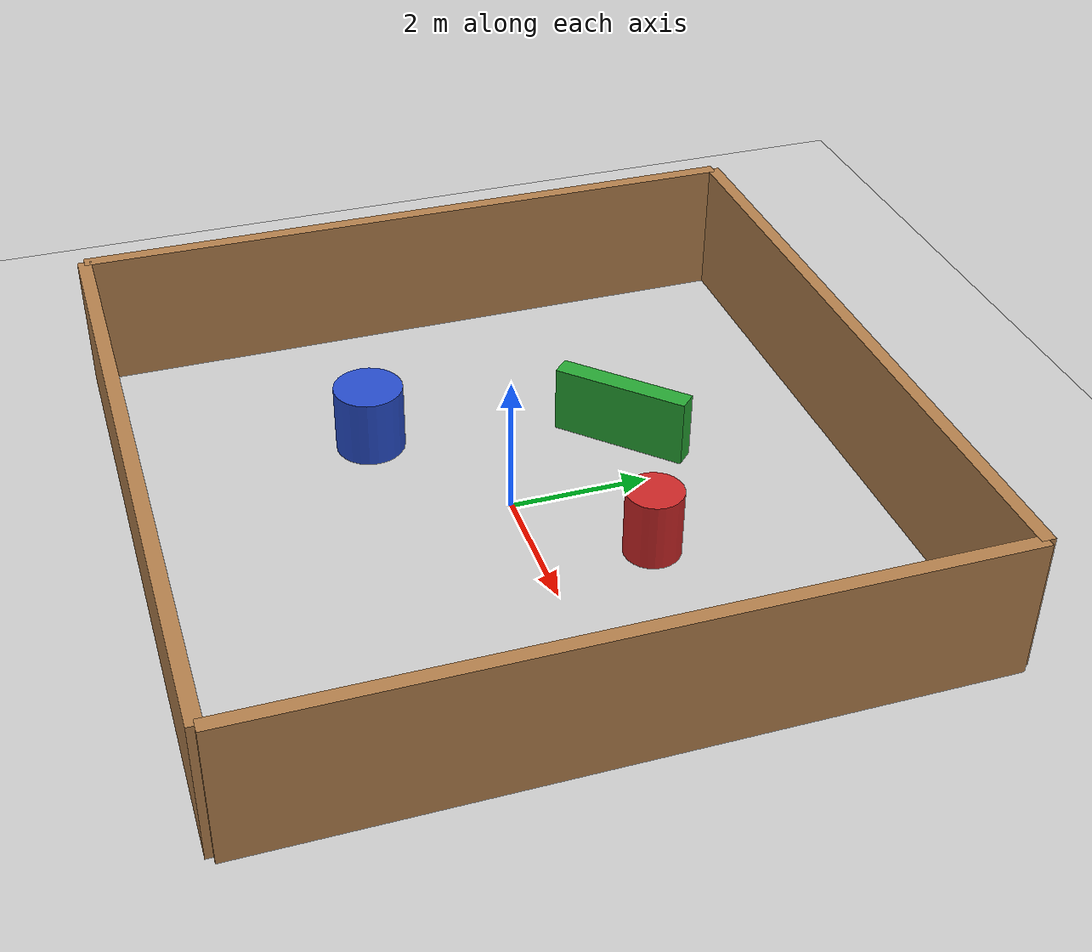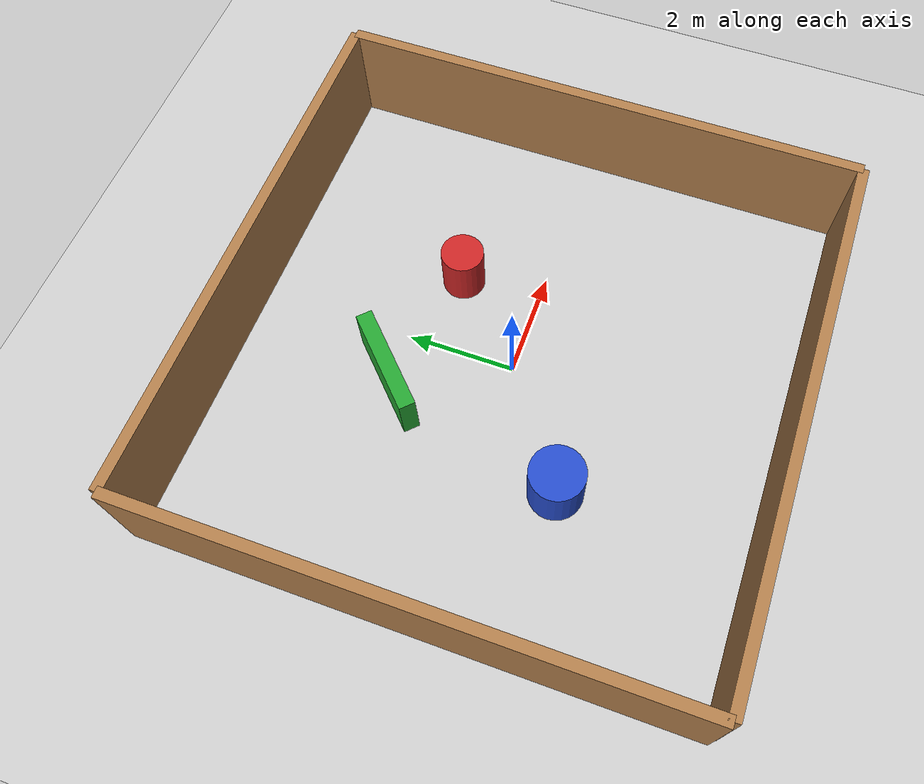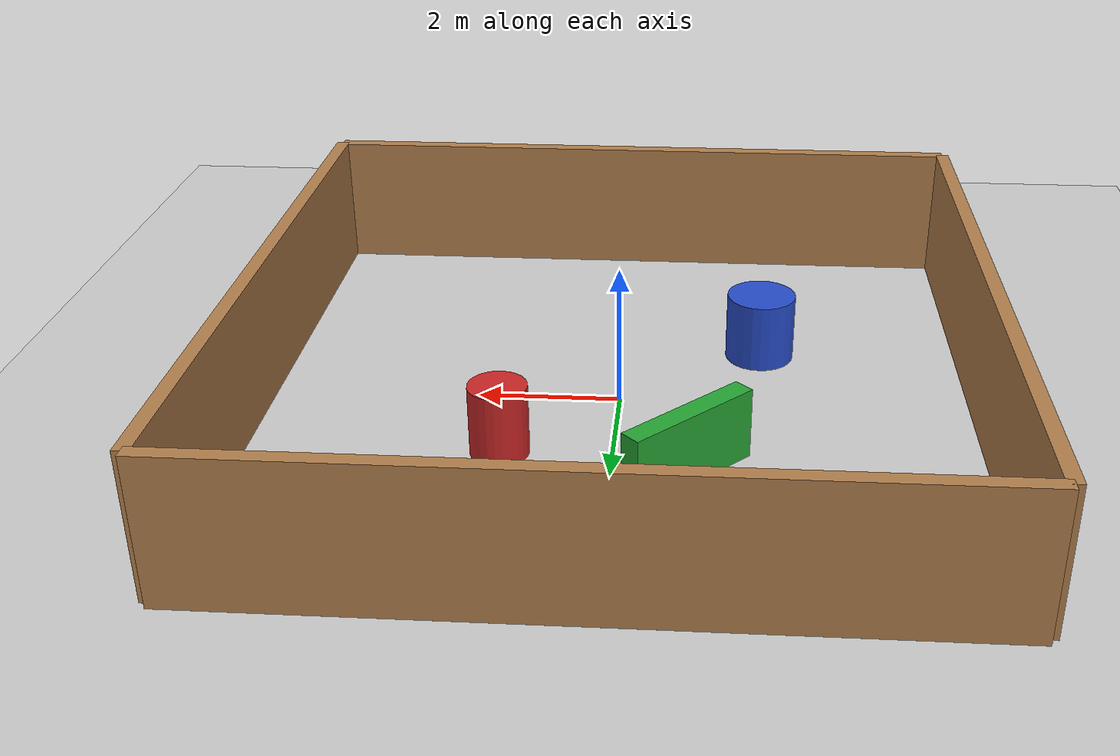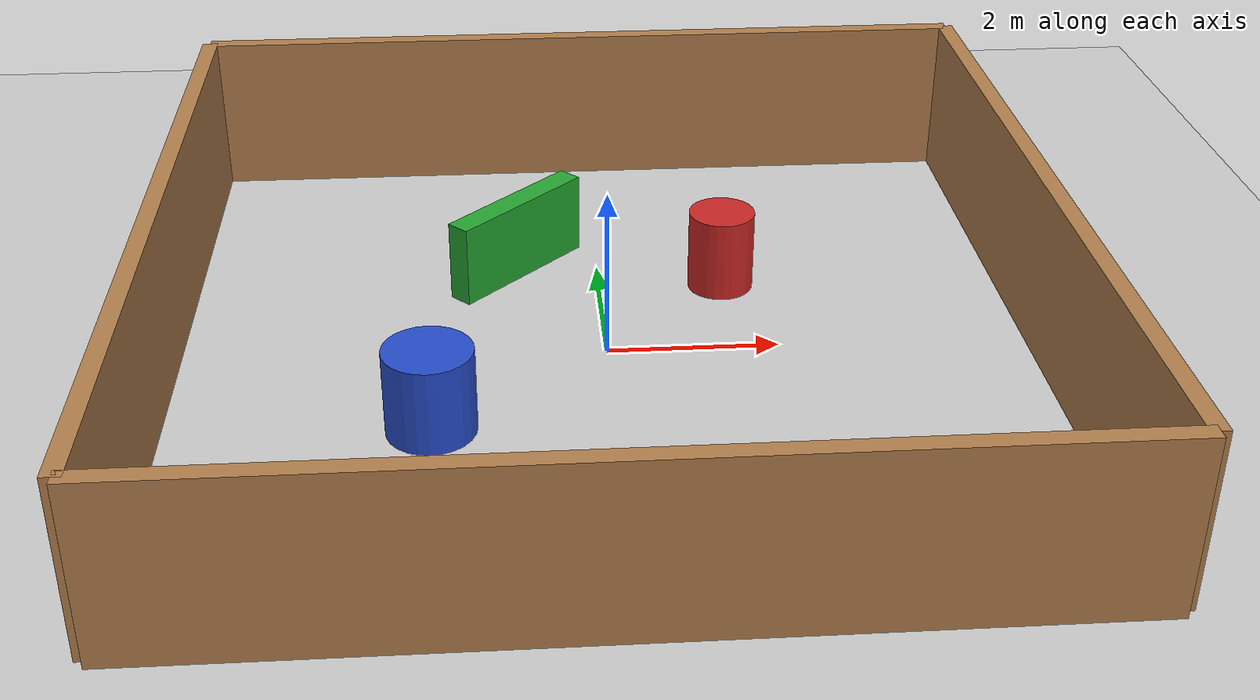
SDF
<sdf version='1.7'>
  <world name='default'>
    <light name='sun' type='directional'>
      <cast_shadows>1</cast_shadows>
      <pose>0 0 10 0 -0 0</pose>
      <diffuse>0.8 0.8 0.8 1</diffuse>
      <specular>0.2 0.2 0.2 1</specular>
      <attenuation>
        <range>1000</range>
        <constant>0.9</constant>
        <linear>0.01</linear>
        <quadratic>0.001</quadratic>
      </attenuation>
      <direction>-0.5 0.1 -0.9</direction>
    </light>
    <model name='ground_plane'>
      <static>1</static>
      <link name='link'>
        <collision name='collision'>
          <geometry>
            <plane>
              <normal>0 0 1</normal>
              <size>100 100</size>
            </plane>
          </geometry>
          <surface>
            <friction>
              <ode>
                <mu>100</mu>
                <mu2>50</mu2>
              </ode>
            </friction>
          </surface>
        </collision>
        <visual name='visual'>
          <cast_shadows>0</cast_shadows>
          <geometry>
            <plane>
              <normal>0 0 1</normal>
              <size>100 100</size>
            </plane>
          </geometry>
          <material>
            <script>
              <uri>file://media/materials/scripts/gazebo.material</uri>
              <name>Gazebo/Grey</name>
            </script>
          </material>
        </visual>
      </link>
    </model>

    <!-- Enclosing Wall 1 -->
    <model name='wall_north'>
      <static>1</static>
      <pose>0 5 1 0 0 0</pose>
      <link name='link'>
        <collision name='collision'>
          <geometry><box><size>10 0.2 2</size></box></geometry>
        </collision>
        <visual name='visual'>
          <geometry><box><size>10 0.2 2</size></box></geometry>
          <material><script><uri>file://media/materials/scripts/gazebo.material</uri><name>Gazebo/Wood</name></script></material>
        </visual>
      </link>
    </model>

    <!-- Enclosing Wall 2 -->
    <model name='wall_south'>
      <static>1</static>
      <pose>0 -5 1 0 0 0</pose>
      <link name='link'>
        <collision name='collision'>
          <geometry><box><size>10 0.2 2</size></box></geometry>
        </collision>
        <visual name='visual'>
          <geometry><box><size>10 0.2 2</size></box></geometry>
          <material><script><uri>file://media/materials/scripts/gazebo.material</uri><name>Gazebo/Wood</name></script></material>
        </visual>
      </link>
    </model>

    <!-- Enclosing Wall 3 -->
    <model name='wall_east'>
      <static>1</static>
      <pose>5 0 1 0 0 1.5708</pose>
      <link name='link'>
        <collision name='collision'>
          <geometry><box><size>10 0.2 2</size></box></geometry>
        </collision>
        <visual name='visual'>
          <geometry><box><size>10 0.2 2</size></box></geometry>
          <material><script><uri>file://media/materials/scripts/gazebo.material</uri><name>Gazebo/Wood</name></script></material>
        </visual>
      </link>
    </model>

    <!-- Enclosing Wall 4 -->
    <model name='wall_west'>
      <static>1</static>
      <pose>-5 0 1 0 0 1.5708</pose>
      <link name='link'>
        <collision name='collision'>
          <geometry><box><size>10 0.2 2</size></box></geometry>
        </collision>
        <visual name='visual'>
          <geometry><box><size>10 0.2 2</size></box></geometry>
          <material><script><uri>file://media/materials/scripts/gazebo.material</uri><name>Gazebo/Wood</name></script></material>
        </visual>
      </link>
    </model>

    <!-- Central Pillar 1 -->
    <model name='obstacle_cylinder_1'>
      <static>1</static>
      <pose>1.5 1.5 0.5 0 0 0</pose>
      <link name='link'>
        <collision name='collision'>
          <geometry><cylinder><radius>0.4</radius><length>1.0</length></cylinder></geometry>
        </collision>
        <visual name='visual'>
          <geometry><cylinder><radius>0.4</radius><length>1.0</length></cylinder></geometry>
          <material><script><uri>file://media/materials/scripts/gazebo.material</uri><name>Gazebo/Red</name></script></material>
        </visual>
      </link>
    </model>

    <!-- Central Pillar 2 -->
    <model name='obstacle_cylinder_2'>
      <static>1</static>
      <pose>-2 -1.5 0.5 0 0 0</pose>
      <link name='link'>
        <collision name='collision'>
          <geometry><cylinder><radius>0.5</radius><length>1.0</length></cylinder></geometry>
        </collision>
        <visual name='visual'>
          <geometry><cylinder><radius>0.5</radius><length>1.0</length></cylinder></geometry>
          <material><script><uri>file://media/materials/scripts/gazebo.material</uri><name>Gazebo/Blue</name></script></material>
        </visual>
      </link>
    </model>

    <!-- Barrier 1 -->
    <model name='barrier_1'>
      <static>1</static>
      <pose>-1 2 0.5 0 0 0.785</pose>
      <link name='link'>
        <collision name='collision'>
          <geometry><box><size>2.0 0.3 1.0</size></box></geometry>
        </collision>
        <visual name='visual'>
          <geometry><box><size>2.0 0.3 1.0</size></box></geometry>
          <material><script><uri>file://media/materials/scripts/gazebo.material</uri><name>Gazebo/Green</name></script></material>
        </visual>
      </link>
    </model>

  </world>
</sdf>
